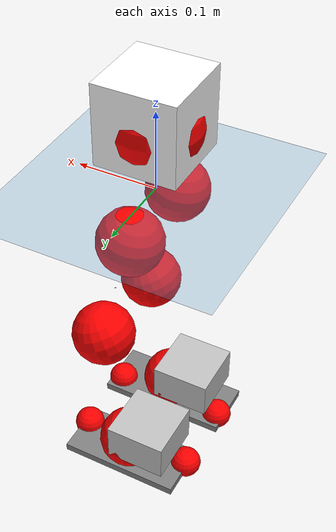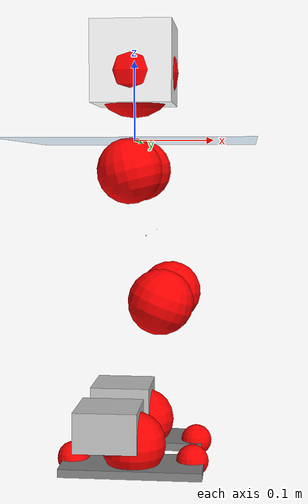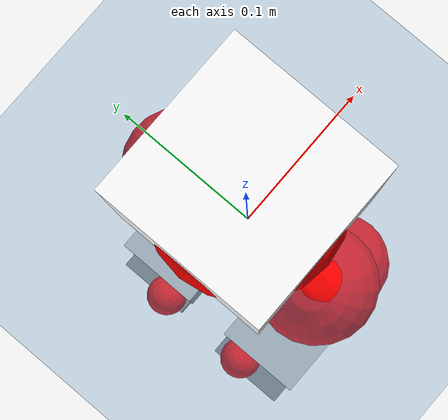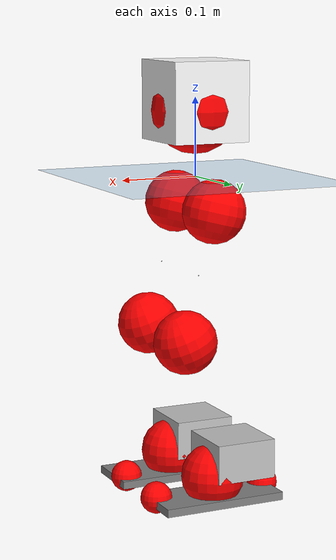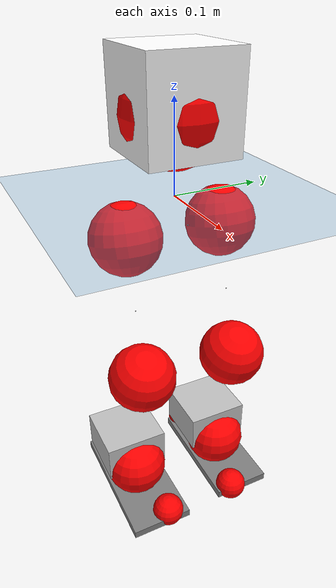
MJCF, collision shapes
<mujoco model="pi_12dof_release_v1">
  <compiler angle="radian" assetdir="assets" balanceinertia="true" inertiafromgeom="false"/>

  <option timestep="0.005" density="1.2" viscosity="2e-05"/>

  <size nkey="1"/>

  <visual>
    <quality shadowsize="8192"/>
    <map shadowclip="0.5"/>
  </visual>

  <default>
    <default class="/">
      <joint armature="0.01" damping="0.01" frictionloss="0.01"/>
      <geom contype="0" conaffinity="0" group="1" solref="-1000 -80"/>
      <site size="0.01 0.005 0.005" group="5"/>
      <general forcelimited="true" biastype="affine" gainprm="20" biasprm="0 -20 -0.5"/>
      <default class="foot">
        <geom size="0.0845 0.036 0.005" type="box" condim="6" group="4" priority="1" friction="0.9 0.2 0.2" solimp="0.015 1 0.005"/>
      </default>
      <default class="reward_collision_sphere">
        <geom group="5" rgba="1 0 0 1"/>
      </default>
    </default>
  </default>

  <asset>
    <texture type="skybox" colorspace="auto" name="//unnamed_texture_0" builtin="gradient" rgb1="0.95 0.95 0.95" rgb2="0.95 0.95 0.95" width="100" height="600"/>
    <texture type="2d" colorspace="auto" name="texplane" builtin="checker" rgb1="0.345 0.575 0.748" rgb2="0.345 0.575 0.748" markrgb="1 1 1" width="512" height="512"/>
    <material name="MatPlane" class="/" texture="texplane" texuniform="true" texrepeat="2 2" specular="0.9"/>
    <mesh name="baselink_1" class="/" file="baselink_1.STL"/>
    <mesh name="r_hip_pitch_link" class="/" file="r_hip_pitch_link.STL"/>
    <mesh name="r_hip_roll_link" class="/" file="r_hip_roll_link.STL"/>
    <mesh name="r_thigh_link" class="/" file="r_thigh_link.STL"/>
    <mesh name="r_calf_link" class="/" file="r_calf_link.STL"/>
    <mesh name="r_ankle_pitch_link" class="/" file="r_ankle_pitch_link.STL"/>
    <mesh name="r_ankle_roll_link" class="/" file="r_ankle_roll_link.STL"/>
    <mesh name="l_hip_pitch_link" class="/" file="l_hip_pitch_link.STL"/>
    <mesh name="l_hip_roll_link" class="/" file="l_hip_roll_link.STL"/>
    <mesh name="l_thigh_link" class="/" file="l_thigh_link.STL"/>
    <mesh name="l_calf_link" class="/" file="l_calf_link.STL"/>
    <mesh name="l_ankle_pitch_link" class="/" file="l_ankle_pitch_link.STL"/>
    <mesh name="l_ankle_roll_link" class="/" file="l_ankle_roll_link.STL"/>
  </asset>

  <worldbody>
    <geom name="floor" class="/" size="100 100 0.125" type="plane" group="0" material="MatPlane"/>
    <light name="toplight_shadow" class="/" pos="0 0 5" dir="0.0990148 0.0990148 -0.990148" type="directional" ambient="0.04 0.04 0.04" diffuse="0.55 0.55 0.55" specular="0.12 0.12 0.12"/>
    <light name="toplight_fill" class="/" pos="0 0 5" dir="0.0990148 0.0990148 -0.990148" type="directional" castshadow="false" ambient="0.04 0.04 0.04" diffuse="0.3 0.3 0.3" specular="0.08 0.08 0.08"/>
    <body name="trunk" pos="0.000262331 -0.000654142 0.00104202" quat="1 0.000154721 8.06429e-05 0.000295805">
      <inertial pos="0.00268255 -0.00294496 0.0489498" quat="0.695253 0.00928305 0.00979319 0.718638" mass="2.16449" diaginertia="0.0155016 0.00172344 0.00960915"/>
      <joint name="//unnamed_joint_0" type="free"/>
      <geom name="//unnamed_geom_1" class="/" type="mesh" density="0" rgba="1 1 1 1" mesh="baselink_1"/>
      <geom name="//unnamed_geom_2" class="/" size="0.0502951 0.0502951 0.0502951" pos="0 0 0.0947886" type="box" rgba="1 1 1 1"/>
      <geom name="//unnamed_geom_3" class="reward_collision_sphere" size="0.0553246" pos="0 0 0.08294"/>
      <site name="imu" class="/" pos="-0.00220135 0.00252857 0.0025011" size="0.010059"/>
      <camera name="track" class="/" pos="0 -1.44547 0" quat="0.707107 0.707107 0 0" mode="trackcom"/>
      <camera name="ego_camera" class="/" pos="0.0832586 0 0.213274" quat="-0.5 -0.5 0.5 0.5"/>
      <body name="r_hip_pitch_link" pos="-0.00136075 -0.0171588 -0.0392853" quat="0.992213 -0.000371224 -0.124549 3.34721e-05">
        <inertial pos="0.00133109 -0.042608 0.000835671" quat="-0.0108248 0.708415 -0.0375275 0.704715" mass="0.373725" diaginertia="0.000180374 1.93366e-05 0.000191501"/>
        <joint name="r_hip_pitch_joint" class="/" pos="0 0 0" axis="-0.0056933 -0.999984 0.000169486" range="-1.73937 1.24761" armature="0.00980637" damping="0.0247549" frictionloss="0.0112157"/>
        <geom name="//unnamed_geom_4" class="/" type="mesh" density="0" rgba="0.75294 0.75294 0.75294 1" mesh="r_hip_pitch_link"/>
        <geom name="//unnamed_geom_5" class="/" size="0.000502951 0.000502951 0.000502951" type="box" rgba="0.75294 0.75294 0.75294 1"/>
        <body name="r_hip_roll_link" pos="0.00156904 -0.0397938 -0.000358304" quat="0.999999 -0.000179868 -0.00114639 0.000419024">
          <inertial pos="-0.00160783 0.00199753 -0.0709481" quat="0.70698 -0.0784341 -0.0782888 0.698498" mass="0.392548" diaginertia="0.000546888 5.62889e-05 0.000298425"/>
          <joint name="r_hip_roll_joint" class="/" pos="0 0 0" axis="-0.999999 0.00114931 -0.00121139" range="-0.115692 0.502371" armature="0.0108235" damping="0.0175019" frictionloss="0.00982665"/>
          <geom name="//unnamed_geom_6" class="/" type="mesh" density="0" rgba="0.75294 0.75294 0.75294 1" mesh="r_hip_roll_link"/>
          <geom name="//unnamed_geom_7" class="/" size="0.000502951 0.000502951 0.000502951" type="box" rgba="0.75294 0.75294 0.75294 1"/>
          <geom name="//unnamed_geom_8" class="reward_collision_sphere" size="0.0402361"/>
          <body name="r_thigh_link" pos="-6.08938e-05 -0.000382732 -0.0810461" quat="1 7.77376e-05 -2.51809e-05 3.75052e-05">
            <inertial pos="-0.00152577 0.000104123 -0.057925" quat="0.735467 0.677548 -0.000209634 0.00426987" mass="0.112671" diaginertia="0.000209403 1.90979e-05 0.000133839"/>
            <joint name="r_thigh_joint" class="/" pos="0 0 0" axis="-0.00608104 -0.00324618 -0.999976" range="-0.350161 0.544879" armature="0.0109687" damping="0" frictionloss="0.0112638"/>
            <geom name="//unnamed_geom_9" class="/" type="mesh" density="0" rgba="0.75294 0.75294 0.75294 1" mesh="r_thigh_link"/>
            <geom name="//unnamed_geom_10" class="/" size="0.000502951 0.000502951 0.000502951" type="box" rgba="0.75294 0.75294 0.75294 1"/>
            <body name="r_calf_link" pos="-0.00252073 -0.00253771 -0.0827715" quat="0.947703 -0.000274104 0.319153 -9.0227e-06">
              <inertial pos="0.000305834 -0.00169313 -0.0819252" quat="0.999981 -0.00168243 -0.00137759 -0.0058032" mass="0.836343" diaginertia="0.00585556 0.000689615 0.00040155"/>
              <joint name="r_calf_joint" class="/" pos="0 0 0" axis="-0.0113373 -0.9999 -0.00846088" stiffness="0.00206514" range="-1.64468 0.653049" armature="0.0101035" damping="0.0113359" frictionloss="0.011165"/>
              <geom name="//unnamed_geom_11" class="/" type="mesh" density="0" rgba="0.75294 0.75294 0.75294 1" mesh="r_calf_link"/>
              <geom name="//unnamed_geom_12" class="/" size="0.000502951 0.000502951 0.000502951" type="box" rgba="0.75294 0.75294 0.75294 1"/>
              <geom name="//unnamed_geom_13" class="reward_collision_sphere" size="0.0402361"/>
              <body name="r_ankle_pitch_link" pos="0.00116121 -0.00142092 -0.167985" quat="0.980064 -1.58133e-05 -0.198683 3.27229e-05">
                <inertial pos="0.00492791 0.0022781 0.00201662" quat="0.00609004 0.709214 -0.00349288 0.704959" mass="0.176328" diaginertia="0.000513116 4.35967e-05 0.000278921"/>
                <joint name="r_ankle_pitch_joint" class="/" pos="0 0 0" axis="0.00207313 -0.999985 0.00501874" range="-1.31204 0.455821" armature="0.010885" damping="0.0122287" frictionloss="0.0110974"/>
                <geom name="//unnamed_geom_14" class="/" type="mesh" density="0" rgba="0.75294 0.75294 0.75294 1" mesh="r_ankle_pitch_link"/>
                <geom name="//unnamed_geom_15" class="/" size="0.0392302 0.0402361 0.0251475" type="box" rgba="0.75294 0.75294 0.75294 1"/>
                <body name="r_ankle_roll_link" pos="0.0861065 0.000424434 0.00223591" quat="1 0.000300257 1.9441e-05 4.285e-05">
                  <inertial pos="-0.0269162 0.000667153 -0.0167489" quat="0.55674 0.430863 0.436442 0.560283" mass="0.544918" diaginertia="0.00199069 0.000212139 0.00068033"/>
                  <joint name="r_ankle_roll_joint" class="/" pos="0 0 0" axis="-0.999929 -0.0100131 0.00646884" stiffness="0.00270704" range="-0.100127 0.182382" armature="0.00976849" damping="0.0110052" frictionloss="0.00953357"/>
                  <geom name="//unnamed_geom_16" class="/" type="mesh" density="0" rgba="0.75294 0.75294 0.75294 1" mesh="r_ankle_roll_link"/>
                  <geom name="//unnamed_geom_17" class="/" type="mesh" rgba="0.75294 0.75294 0.75294 1" mesh="r_ankle_roll_link"/>
                  <geom name="right_foot" class="foot" size="0.087566 0.0387035 0.00504072" pos="-0.0566159 0 -0.0521337"/>
                  <geom name="//unnamed_geom_19" class="reward_collision_sphere" size="0.0402361" pos="-0.0555058 0 -0.0236971"/>
                  <geom name="//unnamed_geom_20" class="reward_collision_sphere" size="0.020118" pos="0.0166517 0.0144547 -0.0473943"/>
                  <geom name="//unnamed_geom_21" class="reward_collision_sphere" size="0.020118" pos="-0.133214 0.0144547 -0.0473943"/>
                  <site name="right_foot" class="foot" pos="-0.0566159 0 -0.0521337" size="0.010059"/>
                </body>
              </body>
            </body>
          </body>
        </body>
      </body>
      <body name="l_hip_pitch_link" pos="0.00141793 0.016516 -0.0369128" quat="0.992175 0.000155832 -0.124856 -0.000330256">
        <inertial pos="0.000367993 0.0398396 0.000160023" quat="-0.034881 0.704963 0.0288914 0.707796" mass="0.388485" diaginertia="0.000220268 2.10808e-05 0.000237885"/>
        <joint name="l_hip_pitch_joint" class="/" pos="0 0 0" axis="0.00200711 0.999992 0.00343002" stiffness="0.00462161" range="-1.24169 1.79179" armature="0.00971475" damping="0.015611" frictionloss="0.0102242"/>
        <geom name="//unnamed_geom_22" class="/" type="mesh" density="0" rgba="0.75294 0.75294 0.75294 1" mesh="l_hip_pitch_link"/>
        <geom name="//unnamed_geom_23" class="/" size="0.000502951 0.000502951 0.000502951" type="box" rgba="0.75294 0.75294 0.75294 1"/>
        <body name="l_hip_roll_link" pos="-0.000438168 0.0410287 -0.0014913" quat="0.999999 0.000488413 0.000271962 -0.00103203">
          <inertial pos="-0.0028253 0.00248843 -0.0731024" quat="0.698038 -0.0719593 -0.0729714 0.708689" mass="0.384027" diaginertia="0.000563779 5.48343e-05 0.000308331"/>
          <joint name="l_hip_roll_joint" class="/" pos="0 0 0" axis="-0.999998 -0.00141432 -0.00153732" range="-0.500077 0.0995966" armature="0.011306" damping="0.00749789" frictionloss="0.0100968"/>
          <geom name="//unnamed_geom_24" class="/" type="mesh" density="0" rgba="0.75294 0.75294 0.75294 1" mesh="l_hip_roll_link"/>
          <geom name="//unnamed_geom_25" class="/" size="0.000502951 0.000502951 0.000502951" type="box" rgba="0.75294 0.75294 0.75294 1"/>
          <geom name="//unnamed_geom_26" class="reward_collision_sphere" size="0.0402361"/>
          <body name="l_thigh_link" pos="0.00142689 0.000289482 -0.0813185" quat="1 -8.87073e-05 1.39434e-06 -6.1552e-05">
            <inertial pos="0.00014294 0.000163638 -0.0561336" quat="0.676996 0.735985 0.00106689 0.00122465" mass="0.11592" diaginertia="0.000207605 1.8365e-05 0.000132573"/>
            <joint name="l_thigh_joint" class="/" pos="0 0 0" axis="-0.00209509 -6.00213e-05 -0.999998" range="-0.619945 0.284307" armature="0.0101082" damping="0" frictionloss="0.00953403"/>
            <geom name="//unnamed_geom_27" class="/" type="mesh" density="0" rgba="0.75294 0.75294 0.75294 1" mesh="l_thigh_link"/>
            <geom name="//unnamed_geom_28" class="/" size="0.000502951 0.000502951 0.000502951" type="box" rgba="0.75294 0.75294 0.75294 1"/>
            <body name="l_calf_link" pos="-0.00252753 0.00110007 -0.0848571" quat="0.94753 0.00118289 0.319665 0.000338932">
              <inertial pos="0.000843553 0.00342562 -0.0813741" quat="0.999974 0.00333585 8.63476e-05 0.00638358" mass="0.833036" diaginertia="0.0059733 0.000684564 0.000422818"/>
              <joint name="l_calf_joint" class="/" pos="0 0 0" axis="9.35834e-05 1 5.39207e-05" range="-0.613083 1.67173" armature="0.0104117" damping="0.00546373" frictionloss="0.00955526"/>
              <geom name="//unnamed_geom_29" class="/" type="mesh" density="0" rgba="0.75294 0.75294 0.75294 1" mesh="l_calf_link"/>
              <geom name="//unnamed_geom_30" class="/" size="0.000502951 0.000502951 0.000502951" type="box" rgba="0.75294 0.75294 0.75294 1"/>
              <geom name="//unnamed_geom_31" class="reward_collision_sphere" size="0.0402361"/>
              <body name="l_ankle_pitch_link" pos="-0.000505201 0.00250495 -0.16466" quat="0.979983 -0.000179501 -0.19908 -6.06761e-05">
                <inertial pos="0.00504036 -0.00197547 0.00015234" quat="-0.00203459 0.707279 0.00232643 0.706927" mass="0.17505" diaginertia="0.000511344 4.38685e-05 0.00027513"/>
                <joint name="l_ankle_pitch_joint" class="/" pos="0 0 0" axis="0.000374609 0.999996 0.00280108" stiffness="0.00919401" range="-0.500395 1.3037" armature="0.00907341" damping="0.0173986" frictionloss="0.00989348"/>
                <geom name="//unnamed_geom_32" class="/" type="mesh" density="0" rgba="0.75294 0.75294 0.75294 1" mesh="l_ankle_pitch_link"/>
                <geom name="//unnamed_geom_33" class="/" size="0.0392302 0.0402361 0.0251475" type="box" rgba="0.75294 0.75294 0.75294 1"/>
                <body name="l_ankle_roll_link" pos="0.0841772 0.00112169 -0.000380465" quat="1 0.000152488 -7.13515e-05 -6.75718e-05">
                  <inertial pos="-0.0272813 -0.00010526 -0.0174551" quat="0.559871 0.430573 0.434092 0.559209" mass="0.533013" diaginertia="0.0018868 0.000202466 0.000658635"/>
                  <joint name="l_ankle_roll_joint" class="/" pos="0 0 0" axis="-0.999999 -0.000832734 0.00101765" range="-0.104394 0.146231" armature="0.0101044" damping="0" frictionloss="0.0105568"/>
                  <geom name="//unnamed_geom_34" class="/" type="mesh" density="0" rgba="0.75294 0.75294 0.75294 1" mesh="l_ankle_roll_link"/>
                  <geom name="//unnamed_geom_35" class="/" type="mesh" rgba="0.75294 0.75294 0.75294 1" mesh="l_ankle_roll_link"/>
                  <geom name="left_foot" class="foot" size="0.0803776 0.0368222 0.00515738" pos="-0.0566159 0 -0.0521337"/>
                  <geom name="//unnamed_geom_37" class="reward_collision_sphere" size="0.0402361" pos="-0.0555058 0 -0.0236971"/>
                  <geom name="//unnamed_geom_38" class="reward_collision_sphere" size="0.020118" pos="0.0166517 -0.0144547 -0.0473943"/>
                  <geom name="//unnamed_geom_39" class="reward_collision_sphere" size="0.020118" pos="-0.133214 -0.0144547 -0.0473943"/>
                  <site name="left_foot" class="foot" pos="-0.0566159 0 -0.0521337" size="0.010059"/>
                </body>
              </body>
            </body>
          </body>
        </body>
      </body>
    </body>
  </worldbody>

  <contact>
    <pair class="/" geom1="floor" geom2="right_foot" name="//unnamed_contact_1"/>
    <pair class="/" geom1="floor" geom2="left_foot" name="//unnamed_contact_0"/>
  </contact>

  <actuator>
    <general name="r_hip_pitch_joint" class="/" joint="r_hip_pitch_joint" forcerange="-21.8138 21.8138" gainprm="20.4467" biasprm="0 -20.4467 -0.490692"/>
    <general name="r_hip_roll_joint" class="/" joint="r_hip_roll_joint" forcerange="-23.14 23.14" gainprm="20.4467" biasprm="0 -20.4467 -0.490692"/>
    <general name="r_thigh_joint" class="/" joint="r_thigh_joint" forcerange="-21.3086 21.3086" gainprm="20.4467" biasprm="0 -20.4467 -0.490692"/>
    <general name="r_calf_joint" class="/" joint="r_calf_joint" forcerange="-21.5077 21.5077" gainprm="20.4467" biasprm="0 -20.4467 -0.490692"/>
    <general name="r_ankle_pitch_joint" class="/" joint="r_ankle_pitch_joint" forcerange="-21.2031 21.2031" gainprm="20.4467" biasprm="0 -20.4467 -0.490692"/>
    <general name="r_ankle_roll_joint" class="/" joint="r_ankle_roll_joint" forcerange="-22.1096 22.1096" gainprm="20.4467" biasprm="0 -20.4467 -0.490692"/>
    <general name="l_hip_pitch_joint" class="/" joint="l_hip_pitch_joint" forcerange="-20.7009 20.7009" gainprm="20.4467" biasprm="0 -20.4467 -0.490692"/>
    <general name="l_hip_roll_joint" class="/" joint="l_hip_roll_joint" forcerange="-21.1547 21.1547" gainprm="20.4467" biasprm="0 -20.4467 -0.490692"/>
    <general name="l_thigh_joint" class="/" joint="l_thigh_joint" forcerange="-21.4005 21.4005" gainprm="20.4467" biasprm="0 -20.4467 -0.490692"/>
    <general name="l_calf_joint" class="/" joint="l_calf_joint" forcerange="-21.4172 21.4172" gainprm="20.4467" biasprm="0 -20.4467 -0.490692"/>
    <general name="l_ankle_pitch_joint" class="/" joint="l_ankle_pitch_joint" forcerange="-20.9004 20.9004" gainprm="20.4467" biasprm="0 -20.4467 -0.490692"/>
    <general name="l_ankle_roll_joint" class="/" joint="l_ankle_roll_joint" forcerange="-20.2203 20.2203" gainprm="20.4467" biasprm="0 -20.4467 -0.490692"/>
  </actuator>

  <sensor>
    <gyro site="imu" name="imu_angular_velocity"/>
    <velocimeter site="imu" name="imu_linear_velocity"/>
    <framelinvel objtype="site" objname="left_foot" name="left_foot_global_linear_velocity"/>
    <framelinvel objtype="site" objname="right_foot" name="right_foot_global_linear_velocity"/>
  </sensor>

  <keyframe>
    <key name="home" qpos="0 0 0.291 1 0 0 0 0.4 0 0 -0.8 0.4 0 -0.4 0 0 0.8 -0.4 0"/>
  </keyframe>
</mujoco>
